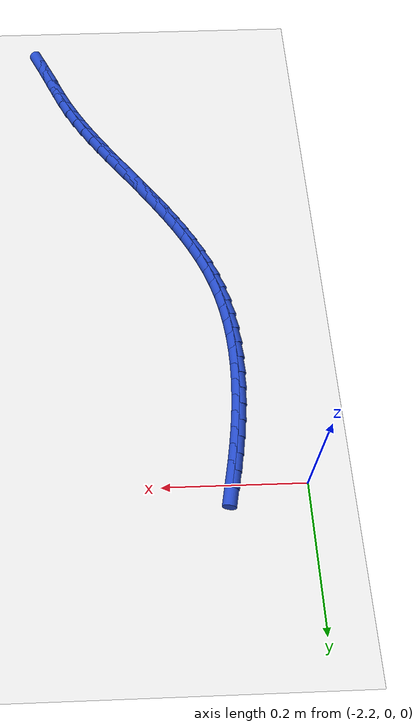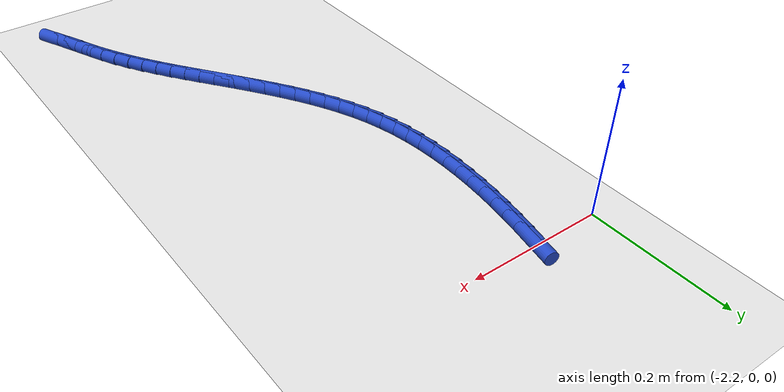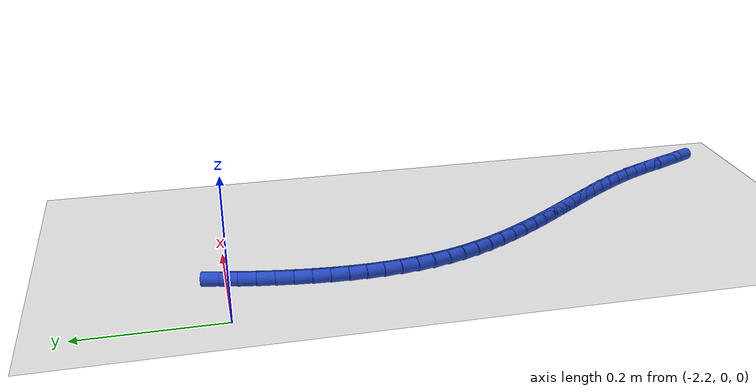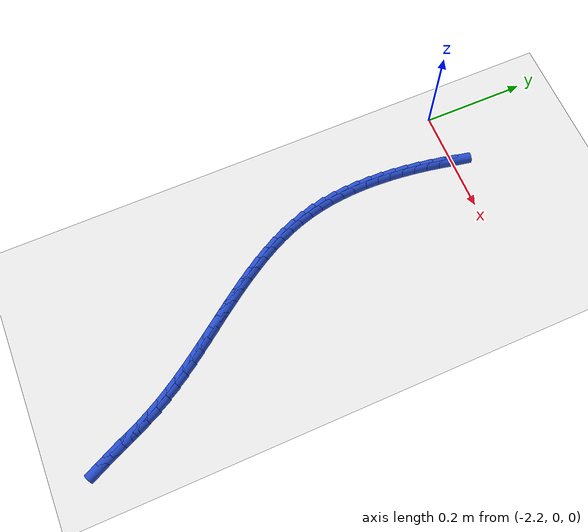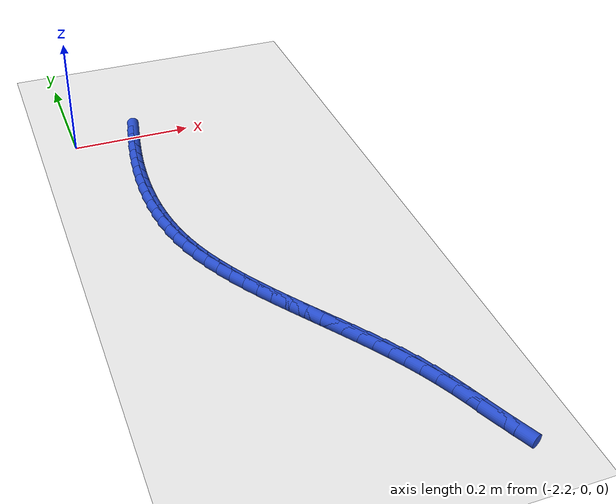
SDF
<sdf version="1.6">
 <world name="default">
  <model name="ground_plane">
   <static>1</static>
   <link name="link">
    <collision name="collision">
     <geometry><plane><normal>0 0 1</normal><size>100 100</size></plane></geometry>
     <surface><friction><ode><mu>100</mu><mu2>50</mu2></ode></friction></surface>
    </collision>
    <visual name="visual">
     <cast_shadows>0</cast_shadows>
     <geometry><plane><normal>0 0 1</normal><size>100 100</size></plane></geometry>
     <material>
      <script><uri>file://media/materials/scripts/gazebo.material</uri><name>Gazebo/WhiteGlow</name></script>
     </material>
    </visual>
   </link>
  </model>
  <model name="line">
   <link name="link_139">
    <pose>-2.097610933479486 -0.006020590148668934 0.01 0 1.57 1.3712315472598218</pose>
    <collision name="collision">
     <geometry><cylinder><radius>0.01</radius><length>0.08</length></cylinder></geometry>
    </collision>
    <visual name="visual">
     <material>
      <script><name>Gazebo/Blue</name><uri>file://media/materials/scripts/gazebo.material</uri></script>
     </material>
     <geometry><cylinder><radius>0.01</radius><length>0.08</length></cylinder></geometry>
    </visual>
   </link>
   <link name="link_140">
    <pose>-2.1025353049073954 -0.030367693731972355 0.01 0 1.57 1.394572842441849</pose>
    <collision name="collision">
     <geometry><cylinder><radius>0.01</radius><length>0.08</length></cylinder></geometry>
    </collision>
    <visual name="visual">
     <material>
      <script><name>Gazebo/Blue</name><uri>file://media/materials/scripts/gazebo.material</uri></script>
     </material>
     <geometry><cylinder><radius>0.01</radius><length>0.08</length></cylinder></geometry>
    </visual>
   </link>
   <link name="link_141">
    <pose>-2.1069047956429743 -0.0549056588757693 0.01 0 1.57 1.4204250051676703</pose>
    <collision name="collision">
     <geometry><cylinder><radius>0.01</radius><length>0.08</length></cylinder></geometry>
    </collision>
    <visual name="visual">
     <material>
      <script><name>Gazebo/Blue</name><uri>file://media/materials/scripts/gazebo.material</uri></script>
     </material>
     <geometry><cylinder><radius>0.01</radius><length>0.08</length></cylinder></geometry>
    </visual>
   </link>
   <link name="link_142">
    <pose>-2.1106431146275737 -0.07957858189484919 0.01 0 1.57 1.4489538172191683</pose>
    <collision name="collision">
     <geometry><cylinder><radius>0.01</radius><length>0.08</length></cylinder></geometry>
    </collision>
    <visual name="visual">
     <material>
      <script><name>Gazebo/Blue</name><uri>file://media/materials/scripts/gazebo.material</uri></script>
     </material>
     <geometry><cylinder><radius>0.01</radius><length>0.08</length></cylinder></geometry>
    </visual>
   </link>
   <link name="link_143">
    <pose>-2.113673970802542 -0.10433055910400103 0.01 0 1.57 1.4803438916888059</pose>
    <collision name="collision">
     <geometry><cylinder><radius>0.01</radius><length>0.08</length></cylinder></geometry>
    </collision>
    <visual name="visual">
     <material>
      <script><name>Gazebo/Blue</name><uri>file://media/materials/scripts/gazebo.material</uri></script>
     </material>
     <geometry><cylinder><radius>0.01</radius><length>0.08</length></cylinder></geometry>
    </visual>
   </link>
   <link name="link_144">
    <pose>-2.115921073109231 -0.12910568681801388 0.01 0 1.57 1.5147949488370098</pose>
    <collision name="collision">
     <geometry><cylinder><radius>0.01</radius><length>0.08</length></cylinder></geometry>
    </collision>
    <visual name="visual">
     <material>
      <script><name>Gazebo/Blue</name><uri>file://media/materials/scripts/gazebo.material</uri></script>
     </material>
     <geometry><cylinder><radius>0.01</radius><length>0.08</length></cylinder></geometry>
    </visual>
   </link>
   <link name="link_145">
    <pose>-2.1173081304889907 -0.15384806135167678 0.01 0 1.57 1.5525162769159098</pose>
    <collision name="collision">
     <geometry><cylinder><radius>0.01</radius><length>0.08</length></cylinder></geometry>
    </collision>
    <visual name="visual">
     <material>
      <script><name>Gazebo/Blue</name><uri>file://media/materials/scripts/gazebo.material</uri></script>
     </material>
     <geometry><cylinder><radius>0.01</radius><length>0.08</length></cylinder></geometry>
    </visual>
   </link>
   <link name="link_146">
    <pose>-2.117758851883172 -0.1785017790197795 0.01 0 1.57 -1.547873986822306</pose>
    <collision name="collision">
     <geometry><cylinder><radius>0.01</radius><length>0.08</length></cylinder></geometry>
    </collision>
    <visual name="visual">
     <material>
      <script><name>Gazebo/Blue</name><uri>file://media/materials/scripts/gazebo.material</uri></script>
     </material>
     <geometry><cylinder><radius>0.01</radius><length>0.08</length></cylinder></geometry>
    </visual>
   </link>
   <link name="link_147">
    <pose>-2.1171969462331233 -0.20301093613710958 0.01 0 1.57 -1.5029895977868204</pose>
    <collision name="collision">
     <geometry><cylinder><radius>0.01</radius><length>0.08</length></cylinder></geometry>
    </collision>
    <visual name="visual">
     <material>
      <script><name>Gazebo/Blue</name><uri>file://media/materials/scripts/gazebo.material</uri></script>
     </material>
     <geometry><cylinder><radius>0.01</radius><length>0.08</length></cylinder></geometry>
    </visual>
   </link>
   <link name="link_148">
    <pose>-2.115546122480197 -0.2273196290184567 0.01 0 1.57 -1.4542474815332447</pose>
    <collision name="collision">
     <geometry><cylinder><radius>0.01</radius><length>0.08</length></cylinder></geometry>
    </collision>
    <visual name="visual">
     <material>
      <script><name>Gazebo/Blue</name><uri>file://media/materials/scripts/gazebo.material</uri></script>
     </material>
     <geometry><cylinder><radius>0.01</radius><length>0.08</length></cylinder></geometry>
    </visual>
   </link>
   <link name="link_149">
    <pose>-2.112730089565742 -0.25137195397861 0.01 0 1.57 -1.4015169266512444</pose>
    <collision name="collision">
     <geometry><cylinder><radius>0.01</radius><length>0.08</length></cylinder></geometry>
    </collision>
    <visual name="visual">
     <material>
      <script><name>Gazebo/Blue</name><uri>file://media/materials/scripts/gazebo.material</uri></script>
     </material>
     <geometry><cylinder><radius>0.01</radius><length>0.08</length></cylinder></geometry>
    </visual>
   </link>
   <link name="link_150">
    <pose>-2.1086725564311095 -0.2751120073323585 0.01 0 1.57 -1.344736372607971</pose>
    <collision name="collision">
     <geometry><cylinder><radius>0.01</radius><length>0.08</length></cylinder></geometry>
    </collision>
    <visual name="visual">
     <material>
      <script><name>Gazebo/Blue</name><uri>file://media/materials/scripts/gazebo.material</uri></script>
     </material>
     <geometry><cylinder><radius>0.01</radius><length>0.08</length></cylinder></geometry>
    </visual>
   </link>
   <link name="link_151">
    <pose>-2.10329723201765 -0.2984838853944913 0.01 0 1.57 -1.28395106223528</pose>
    <collision name="collision">
     <geometry><cylinder><radius>0.01</radius><length>0.08</length></cylinder></geometry>
    </collision>
    <visual name="visual">
     <material>
      <script><name>Gazebo/Blue</name><uri>file://media/materials/scripts/gazebo.material</uri></script>
     </material>
     <geometry><cylinder><radius>0.01</radius><length>0.08</length></cylinder></geometry>
    </visual>
   </link>
   <link name="link_152">
    <pose>-2.096528054693931 -0.3214317784436852 0.01 0 1.57 -1.2220129279993952</pose>
    <collision name="collision">
     <geometry><cylinder><radius>0.01</radius><length>0.08</length></cylinder></geometry>
    </collision>
    <visual name="visual">
     <material>
      <script><name>Gazebo/Blue</name><uri>file://media/materials/scripts/gazebo.material</uri></script>
     </material>
     <geometry><cylinder><radius>0.01</radius><length>0.08</length></cylinder></geometry>
    </visual>
   </link>
   <link name="link_153">
    <pose>-2.088348634527766 -0.3439243158156543 0.01 0 1.57 -1.1654612013052317</pose>
    <collision name="collision">
     <geometry><cylinder><radius>0.01</radius><length>0.08</length></cylinder></geometry>
    </collision>
    <visual name="visual">
     <material>
      <script><name>Gazebo/Blue</name><uri>file://media/materials/scripts/gazebo.material</uri></script>
     </material>
     <geometry><cylinder><radius>0.01</radius><length>0.08</length></cylinder></geometry>
    </visual>
   </link>
   <link name="link_154">
    <pose>-2.078881592678418 -0.36598706003279197 0.01 0 1.57 -1.1153425295038506</pose>
    <collision name="collision">
     <geometry><cylinder><radius>0.01</radius><length>0.08</length></cylinder></geometry>
    </collision>
    <visual name="visual">
     <material>
      <script><name>Gazebo/Blue</name><uri>file://media/materials/scripts/gazebo.material</uri></script>
     </material>
     <geometry><cylinder><radius>0.01</radius><length>0.08</length></cylinder></geometry>
    </visual>
   </link>
   <link name="link_155">
    <pose>-2.0682693050823393 -0.3876536643561955 0.01 0 1.57 -1.071640288548427</pose>
    <collision name="collision">
     <geometry><cylinder><radius>0.01</radius><length>0.08</length></cylinder></geometry>
    </collision>
    <visual name="visual">
     <material>
      <script><name>Gazebo/Blue</name><uri>file://media/materials/scripts/gazebo.material</uri></script>
     </material>
     <geometry><cylinder><radius>0.01</radius><length>0.08</length></cylinder></geometry>
    </visual>
   </link>
   <link name="link_156">
    <pose>-2.0566541476759874 -0.40895778204696054 0.01 0 1.57 -1.0342249000662174</pose>
    <collision name="collision">
     <geometry><cylinder><radius>0.01</radius><length>0.08</length></cylinder></geometry>
    </collision>
    <visual name="visual">
     <material>
      <script><name>Gazebo/Blue</name><uri>file://media/materials/scripts/gazebo.material</uri></script>
     </material>
     <geometry><cylinder><radius>0.01</radius><length>0.08</length></cylinder></geometry>
    </visual>
   </link>
   <link name="link_157">
    <pose>-2.044178496395817 -0.42993306636618484 0.01 0 1.57 -1.0029079839978778</pose>
    <collision name="collision">
     <geometry><cylinder><radius>0.01</radius><length>0.08</length></cylinder></geometry>
    </collision>
    <visual name="visual">
     <material>
      <script><name>Gazebo/Blue</name><uri>file://media/materials/scripts/gazebo.material</uri></script>
     </material>
     <geometry><cylinder><radius>0.01</radius><length>0.08</length></cylinder></geometry>
    </visual>
   </link>
   <link name="link_158">
    <pose>-2.0309847271782817 -0.45061317057496514 0.01 0 1.57 -0.9774851381733473</pose>
    <collision name="collision">
     <geometry><cylinder><radius>0.01</radius><length>0.08</length></cylinder></geometry>
    </collision>
    <visual name="visual">
     <material>
      <script><name>Gazebo/Blue</name><uri>file://media/materials/scripts/gazebo.material</uri></script>
     </material>
     <geometry><cylinder><radius>0.01</radius><length>0.08</length></cylinder></geometry>
    </visual>
   </link>
   <link name="link_159">
    <pose>-2.017215215959838 -0.4710317479343984 0.01 0 1.57 -0.957767731732206</pose>
    <collision name="collision">
     <geometry><cylinder><radius>0.01</radius><length>0.08</length></cylinder></geometry>
    </collision>
    <visual name="visual">
     <material>
      <script><name>Gazebo/Blue</name><uri>file://media/materials/scripts/gazebo.material</uri></script>
     </material>
     <geometry><cylinder><radius>0.01</radius><length>0.08</length></cylinder></geometry>
    </visual>
   </link>
   <link name="link_160">
    <pose>-2.0030123386769407 -0.49122245170558143 0.01 0 1.57 -0.9436055952749914</pose>
    <collision name="collision">
     <geometry><cylinder><radius>0.01</radius><length>0.08</length></cylinder></geometry>
    </collision>
    <visual name="visual">
     <material>
      <script><name>Gazebo/Blue</name><uri>file://media/materials/scripts/gazebo.material</uri></script>
     </material>
     <geometry><cylinder><radius>0.01</radius><length>0.08</length></cylinder></geometry>
    </visual>
   </link>
   <link name="link_161">
    <pose>-1.9885184712660458 -0.5112189351496115 0.01 0 1.57 -0.9349028774851812</pose>
    <collision name="collision">
     <geometry><cylinder><radius>0.01</radius><length>0.08</length></cylinder></geometry>
    </collision>
    <visual name="visual">
     <material>
      <script><name>Gazebo/Blue</name><uri>file://media/materials/scripts/gazebo.material</uri></script>
     </material>
     <geometry><cylinder><radius>0.01</radius><length>0.08</length></cylinder></geometry>
    </visual>
   </link>
   <link name="link_162">
    <pose>-1.9738759896636071 -0.5310548515275852 0.01 0 1.57 -0.9316291123930003</pose>
    <collision name="collision">
     <geometry><cylinder><radius>0.01</radius><length>0.08</length></cylinder></geometry>
    </collision>
    <visual name="visual">
     <material>
      <script><name>Gazebo/Blue</name><uri>file://media/materials/scripts/gazebo.material</uri></script>
     </material>
     <geometry><cylinder><radius>0.01</radius><length>0.08</length></cylinder></geometry>
    </visual>
   </link>
   <link name="link_163">
    <pose>-1.95922726980608 -0.5507638541005996 0.01 0 1.57 -0.933827032606128</pose>
    <collision name="collision">
     <geometry><cylinder><radius>0.01</radius><length>0.08</length></cylinder></geometry>
    </collision>
    <visual name="visual">
     <material>
      <script><name>Gazebo/Blue</name><uri>file://media/materials/scripts/gazebo.material</uri></script>
     </material>
     <geometry><cylinder><radius>0.01</radius><length>0.08</length></cylinder></geometry>
    </visual>
   </link>
   <link name="link_164">
    <pose>-1.9447146876299195 -0.5703795961297521 0.01 0 1.57 -0.941622435742591</pose>
    <collision name="collision">
     <geometry><cylinder><radius>0.01</radius><length>0.08</length></cylinder></geometry>
    </collision>
    <visual name="visual">
     <material>
      <script><name>Gazebo/Blue</name><uri>file://media/materials/scripts/gazebo.material</uri></script>
     </material>
     <geometry><cylinder><radius>0.01</radius><length>0.08</length></cylinder></geometry>
    </visual>
   </link>
   <link name="link_165">
    <pose>-1.9304769488813998 -0.5899409542901842 0.01 0 1.57 -0.9552197164000688</pose>
    <collision name="collision">
     <geometry><cylinder><radius>0.01</radius><length>0.08</length></cylinder></geometry>
    </collision>
    <visual name="visual">
     <material>
      <script><name>Gazebo/Blue</name><uri>file://media/materials/scripts/gazebo.material</uri></script>
     </material>
     <geometry><cylinder><radius>0.01</radius><length>0.08</length></cylinder></geometry>
    </visual>
   </link>
   <link name="link_166">
    <pose>-1.9166002413515042 -0.6095615488021139 0.01 0 1.57 -0.9746122863367565</pose>
    <collision name="collision">
     <geometry><cylinder><radius>0.01</radius><length>0.08</length></cylinder></geometry>
    </collision>
    <visual name="visual">
     <material>
      <script><name>Gazebo/Blue</name><uri>file://media/materials/scripts/gazebo.material</uri></script>
     </material>
     <geometry><cylinder><radius>0.01</radius><length>0.08</length></cylinder></geometry>
    </visual>
   </link>
   <link name="link_167">
    <pose>-1.9031315172635932 -0.6294108399389572 0.01 0 1.57 -0.999540899265153</pose>
    <collision name="collision">
     <geometry><cylinder><radius>0.01</radius><length>0.08</length></cylinder></geometry>
    </collision>
    <visual name="visual">
     <material>
      <script><name>Gazebo/Blue</name><uri>file://media/materials/scripts/gazebo.material</uri></script>
     </material>
     <geometry><cylinder><radius>0.01</radius><length>0.08</length></cylinder></geometry>
    </visual>
   </link>
   <link name="link_168">
    <pose>-1.8901167861251136 -0.649659629647258 0.01 0 1.57 -1.0295552153903769</pose>
    <collision name="collision">
     <geometry><cylinder><radius>0.01</radius><length>0.08</length></cylinder></geometry>
    </collision>
    <visual name="visual">
     <material>
      <script><name>Gazebo/Blue</name><uri>file://media/materials/scripts/gazebo.material</uri></script>
     </material>
     <geometry><cylinder><radius>0.01</radius><length>0.08</length></cylinder></geometry>
    </visual>
   </link>
   <link name="link_169">
    <pose>-1.877602057443513 -0.6704787198735601 0.01 0 1.57 -1.064022823456506</pose>
    <collision name="collision">
     <geometry><cylinder><radius>0.01</radius><length>0.08</length></cylinder></geometry>
    </collision>
    <visual name="visual">
     <material>
      <script><name>Gazebo/Blue</name><uri>file://media/materials/scripts/gazebo.material</uri></script>
     </material>
     <geometry><cylinder><radius>0.01</radius><length>0.08</length></cylinder></geometry>
    </visual>
   </link>
   <link name="link_170">
    <pose>-1.8656333407262393 -0.6920389125644074 0.01 0 1.57 -1.1020999319813969</pose>
    <collision name="collision">
     <geometry><cylinder><radius>0.01</radius><length>0.08</length></cylinder></geometry>
    </collision>
    <visual name="visual">
     <material>
      <script><name>Gazebo/Blue</name><uri>file://media/materials/scripts/gazebo.material</uri></script>
     </material>
     <geometry><cylinder><radius>0.01</radius><length>0.08</length></cylinder></geometry>
    </visual>
   </link>
   <link name="link_171">
    <pose>-1.8542558563795009 -0.7145095376144208 0.01 0 1.57 -1.135904838284035</pose>
    <collision name="collision">
     <geometry><cylinder><radius>0.01</radius><length>0.08</length></cylinder></geometry>
    </collision>
    <visual name="visual">
     <material>
      <script><name>Gazebo/Blue</name><uri>file://media/materials/scripts/gazebo.material</uri></script>
     </material>
     <geometry><cylinder><radius>0.01</radius><length>0.08</length></cylinder></geometry>
    </visual>
   </link>
   <link name="link_172">
    <pose>-1.8434079941979675 -0.737860634637602 0.01 0 1.57 -1.152053062152368</pose>
    <collision name="collision">
     <geometry><cylinder><radius>0.01</radius><length>0.08</length></cylinder></geometry>
    </collision>
    <visual name="visual">
     <material>
      <script><name>Gazebo/Blue</name><uri>file://media/materials/scripts/gazebo.material</uri></script>
     </material>
     <geometry><cylinder><radius>0.01</radius><length>0.08</length></cylinder></geometry>
    </visual>
   </link>
   <link name="link_173">
    <pose>-1.832814259988268 -0.7616632471233169 0.01 0 1.57 -1.15001954317615</pose>
    <collision name="collision">
     <geometry><cylinder><radius>0.01</radius><length>0.08</length></cylinder></geometry>
    </collision>
    <visual name="visual">
     <material>
      <script><name>Gazebo/Blue</name><uri>file://media/materials/scripts/gazebo.material</uri></script>
     </material>
     <geometry><cylinder><radius>0.01</radius><length>0.08</length></cylinder></geometry>
    </visual>
   </link>
   <link name="link_174">
    <pose>-1.822173667795487 -0.7854408642107463 0.01 0 1.57 -1.1297243692707466</pose>
    <collision name="collision">
     <geometry><cylinder><radius>0.01</radius><length>0.08</length></cylinder></geometry>
    </collision>
    <visual name="visual">
     <material>
      <script><name>Gazebo/Blue</name><uri>file://media/materials/scripts/gazebo.material</uri></script>
     </material>
     <geometry><cylinder><radius>0.01</radius><length>0.08</length></cylinder></geometry>
    </visual>
   </link>
  </model>
 </world>
</sdf>
